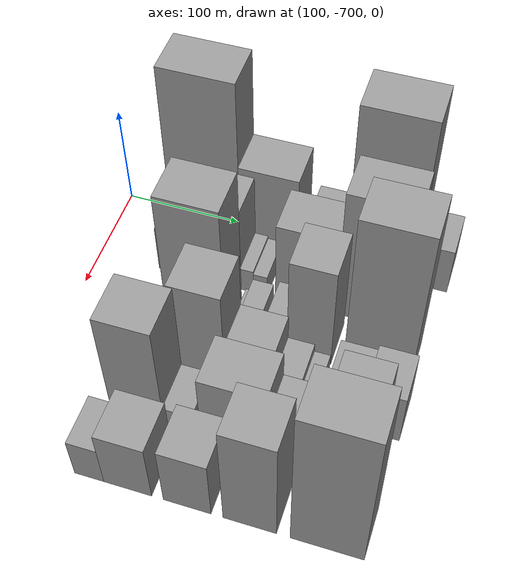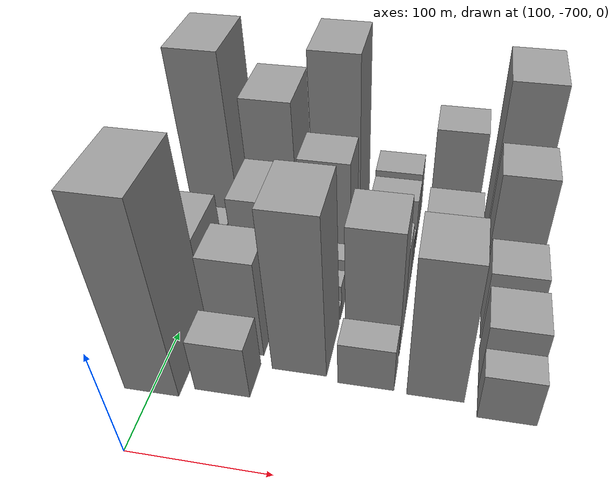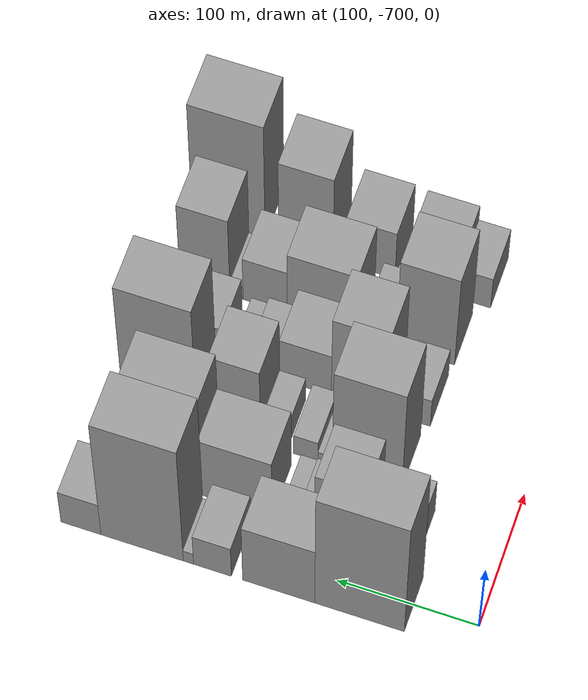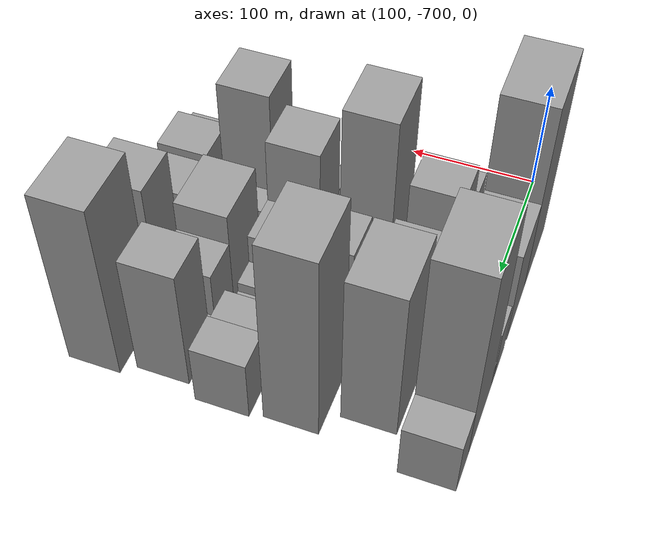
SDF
<sdf version="1.6">
 <world name="default">
  <model name="building_7">
   <static>1</static>
   <pose>100.0000 -622.5215 0 0.000000 0.000000 0.000000</pose>
   <link name="link">
    <pose>0 0 88.50 0 0 0</pose>
    <collision name="collision"><geometry><box><size>40.0000 62.9537 177.0000</size></box></geometry></collision>
    <visual name="visual">
     <cast_shadows>0</cast_shadows>
     <geometry><box><size>40.0000 62.9537 177.0000</size></box></geometry>
     <material>
      <script>
       <uri>model://grey_wall/materials/scripts</uri>
       <uri>model://grey_wall/materials/textures</uri>
       <name>vrc/grey_wall</name>
      </script>
     </material>
    </visual>
   </link>
  </model>
  <model name="building_8">
   <static>1</static>
   <pose>100.0000 -565.6612 0 0.000000 0.000000 0.000000</pose>
   <link name="link">
    <pose>0 0 45.00 0 0 0</pose>
    <collision name="collision"><geometry><box><size>40.0000 50.7670 90.0000</size></box></geometry></collision>
    <visual name="visual">
     <cast_shadows>0</cast_shadows>
     <geometry><box><size>40.0000 50.7670 90.0000</size></box></geometry>
     <material>
      <script>
       <uri>model://grey_wall/materials/scripts</uri>
       <uri>model://grey_wall/materials/textures</uri>
       <name>vrc/grey_wall</name>
      </script>
     </material>
    </visual>
   </link>
  </model>
  <model name="building_9">
   <static>1</static>
   <pose>100.0000 -518.8695 0 0.000000 0.000000 0.000000</pose>
   <link name="link">
    <pose>0 0 24.00 0 0 0</pose>
    <collision name="collision"><geometry><box><size>40.0000 26.8164 48.0000</size></box></geometry></collision>
    <visual name="visual">
     <cast_shadows>0</cast_shadows>
     <geometry><box><size>40.0000 26.8164 48.0000</size></box></geometry>
     <material>
      <script>
       <uri>model://grey_wall/materials/scripts</uri>
       <uri>model://grey_wall/materials/textures</uri>
       <name>vrc/grey_wall</name>
      </script>
     </material>
    </visual>
   </link>
  </model>
  <model name="building_10">
   <static>1</static>
   <pose>100.0000 -501.8255 0 0.000000 0.000000 0.000000</pose>
   <link name="link">
    <pose>0 0 9.00 0 0 0</pose>
    <collision name="collision"><geometry><box><size>40.0000 7.2716 18.0000</size></box></geometry></collision>
    <visual name="visual">
     <cast_shadows>0</cast_shadows>
     <geometry><box><size>40.0000 7.2716 18.0000</size></box></geometry>
     <material>
      <script>
       <uri>model://grey_wall/materials/scripts</uri>
       <uri>model://grey_wall/materials/textures</uri>
       <name>vrc/grey_wall</name>
      </script>
     </material>
    </visual>
   </link>
  </model>
  <model name="building_11">
   <static>1</static>
   <pose>100.0000 -468.8463 0 0.000000 0.000000 0.000000</pose>
   <link name="link">
    <pose>0 0 91.50 0 0 0</pose>
    <collision name="collision"><geometry><box><size>40.0000 58.6867 183.0000</size></box></geometry></collision>
    <visual name="visual">
     <cast_shadows>0</cast_shadows>
     <geometry><box><size>40.0000 58.6867 183.0000</size></box></geometry>
     <material>
      <script>
       <uri>model://grey_wall/materials/scripts</uri>
       <uri>model://grey_wall/materials/textures</uri>
       <name>vrc/grey_wall</name>
      </script>
     </material>
    </visual>
   </link>
  </model>
  <model name="building_12">
   <static>1</static>
   <pose>100.0000 -425.2195 0 0.000000 0.000000 0.000000</pose>
   <link name="link">
    <pose>0 0 25.50 0 0 0</pose>
    <collision name="collision"><geometry><box><size>40.0000 28.5671 51.0000</size></box></geometry></collision>
    <visual name="visual">
     <cast_shadows>0</cast_shadows>
     <geometry><box><size>40.0000 28.5671 51.0000</size></box></geometry>
     <material>
      <script>
       <uri>model://grey_wall/materials/scripts</uri>
       <uri>model://grey_wall/materials/textures</uri>
       <name>vrc/grey_wall</name>
      </script>
     </material>
    </visual>
   </link>
  </model>
  <model name="building_57">
   <static>1</static>
   <pose>149.0000 -632.0075 0 0.000000 0.000000 0.000000</pose>
   <link name="link">
    <pose>0 0 25.50 0 0 0</pose>
    <collision name="collision"><geometry><box><size>40.0000 28.6784 51.0000</size></box></geometry></collision>
    <visual name="visual">
     <cast_shadows>0</cast_shadows>
     <geometry><box><size>40.0000 28.6784 51.0000</size></box></geometry>
     <material>
      <script>
       <uri>model://grey_wall/materials/scripts</uri>
       <uri>model://grey_wall/materials/textures</uri>
       <name>vrc/grey_wall</name>
      </script>
     </material>
    </visual>
   </link>
  </model>
  <model name="building_58">
   <static>1</static>
   <pose>149.0000 -591.9641 0 0.000000 0.000000 0.000000</pose>
   <link name="link">
    <pose>0 0 46.50 0 0 0</pose>
    <collision name="collision"><geometry><box><size>40.0000 35.4084 93.0000</size></box></geometry></collision>
    <visual name="visual">
     <cast_shadows>0</cast_shadows>
     <geometry><box><size>40.0000 35.4084 93.0000</size></box></geometry>
     <material>
      <script>
       <uri>model://grey_wall/materials/scripts</uri>
       <uri>model://grey_wall/materials/textures</uri>
       <name>vrc/grey_wall</name>
      </script>
     </material>
    </visual>
   </link>
  </model>
  <model name="building_59">
   <static>1</static>
   <pose>149.0000 -568.5882 0 0.000000 0.000000 0.000000</pose>
   <link name="link">
    <pose>0 0 13.50 0 0 0</pose>
    <collision name="collision"><geometry><box><size>40.0000 11.3434 27.0000</size></box></geometry></collision>
    <visual name="visual">
     <cast_shadows>0</cast_shadows>
     <geometry><box><size>40.0000 11.3434 27.0000</size></box></geometry>
     <material>
      <script>
       <uri>model://grey_wall/materials/scripts</uri>
       <uri>model://grey_wall/materials/textures</uri>
       <name>vrc/grey_wall</name>
      </script>
     </material>
    </visual>
   </link>
  </model>
  <model name="building_60">
   <static>1</static>
   <pose>149.0000 -556.9815 0 0.000000 0.000000 0.000000</pose>
   <link name="link">
    <pose>0 0 12.00 0 0 0</pose>
    <collision name="collision"><geometry><box><size>40.0000 11.8700 24.0000</size></box></geometry></collision>
    <visual name="visual">
     <cast_shadows>0</cast_shadows>
     <geometry><box><size>40.0000 11.8700 24.0000</size></box></geometry>
     <material>
      <script>
       <uri>model://grey_wall/materials/scripts</uri>
       <uri>model://grey_wall/materials/textures</uri>
       <name>vrc/grey_wall</name>
      </script>
     </material>
    </visual>
   </link>
  </model>
  <model name="building_61">
   <static>1</static>
   <pose>149.0000 -518.2581 0 0.000000 0.000000 0.000000</pose>
   <link name="link">
    <pose>0 0 45.00 0 0 0</pose>
    <collision name="collision"><geometry><box><size>40.0000 51.5768 90.0000</size></box></geometry></collision>
    <visual name="visual">
     <cast_shadows>0</cast_shadows>
     <geometry><box><size>40.0000 51.5768 90.0000</size></box></geometry>
     <material>
      <script>
       <uri>model://grey_wall/materials/scripts</uri>
       <uri>model://grey_wall/materials/textures</uri>
       <name>vrc/grey_wall</name>
      </script>
     </material>
    </visual>
   </link>
  </model>
  <model name="building_62">
   <static>1</static>
   <pose>149.0000 -465.1598 0 0.000000 0.000000 0.000000</pose>
   <link name="link">
    <pose>0 0 72.00 0 0 0</pose>
    <collision name="collision"><geometry><box><size>40.0000 54.6198 144.0000</size></box></geometry></collision>
    <visual name="visual">
     <cast_shadows>0</cast_shadows>
     <geometry><box><size>40.0000 54.6198 144.0000</size></box></geometry>
     <material>
      <script>
       <uri>model://grey_wall/materials/scripts</uri>
       <uri>model://grey_wall/materials/textures</uri>
       <name>vrc/grey_wall</name>
      </script>
     </material>
    </visual>
   </link>
  </model>
  <model name="building_103">
   <static>1</static>
   <pose>198.0000 -595.1270 0 0.000000 0.000000 0.000000</pose>
   <link name="link">
    <pose>0 0 75.00 0 0 0</pose>
    <collision name="collision"><geometry><box><size>40.0000 49.7602 150.0000</size></box></geometry></collision>
    <visual name="visual">
     <cast_shadows>0</cast_shadows>
     <geometry><box><size>40.0000 49.7602 150.0000</size></box></geometry>
     <material>
      <script>
       <uri>model://grey_wall/materials/scripts</uri>
       <uri>model://grey_wall/materials/textures</uri>
       <name>vrc/grey_wall</name>
      </script>
     </material>
    </visual>
   </link>
  </model>
  <model name="building_104">
   <static>1</static>
   <pose>198.0000 -563.1306 0 0.000000 0.000000 0.000000</pose>
   <link name="link">
    <pose>0 0 7.50 0 0 0</pose>
    <collision name="collision"><geometry><box><size>40.0000 6.2326 15.0000</size></box></geometry></collision>
    <visual name="visual">
     <cast_shadows>0</cast_shadows>
     <geometry><box><size>40.0000 6.2326 15.0000</size></box></geometry>
     <material>
      <script>
       <uri>model://grey_wall/materials/scripts</uri>
       <uri>model://grey_wall/materials/textures</uri>
       <name>vrc/grey_wall</name>
      </script>
     </material>
    </visual>
   </link>
  </model>
  <model name="building_105">
   <static>1</static>
   <pose>198.0000 -551.3406 0 0.000000 0.000000 0.000000</pose>
   <link name="link">
    <pose>0 0 15.00 0 0 0</pose>
    <collision name="collision"><geometry><box><size>40.0000 17.3473 30.0000</size></box></geometry></collision>
    <visual name="visual">
     <cast_shadows>0</cast_shadows>
     <geometry><box><size>40.0000 17.3473 30.0000</size></box></geometry>
     <material>
      <script>
       <uri>model://grey_wall/materials/scripts</uri>
       <uri>model://grey_wall/materials/textures</uri>
       <name>vrc/grey_wall</name>
      </script>
     </material>
    </visual>
   </link>
  </model>
  <model name="building_106">
   <static>1</static>
   <pose>198.0000 -528.3417 0 0.000000 0.000000 0.000000</pose>
   <link name="link">
    <pose>0 0 18.00 0 0 0</pose>
    <collision name="collision"><geometry><box><size>40.0000 18.6507 36.0000</size></box></geometry></collision>
    <visual name="visual">
     <cast_shadows>0</cast_shadows>
     <geometry><box><size>40.0000 18.6507 36.0000</size></box></geometry>
     <material>
      <script>
       <uri>model://grey_wall/materials/scripts</uri>
       <uri>model://grey_wall/materials/textures</uri>
       <name>vrc/grey_wall</name>
      </script>
     </material>
    </visual>
   </link>
  </model>
  <model name="building_107">
   <static>1</static>
   <pose>198.0000 -501.0726 0 0.000000 0.000000 0.000000</pose>
   <link name="link">
    <pose>0 0 57.00 0 0 0</pose>
    <collision name="collision"><geometry><box><size>40.0000 35.8875 114.0000</size></box></geometry></collision>
    <visual name="visual">
     <cast_shadows>0</cast_shadows>
     <geometry><box><size>40.0000 35.8875 114.0000</size></box></geometry>
     <material>
      <script>
       <uri>model://grey_wall/materials/scripts</uri>
       <uri>model://grey_wall/materials/textures</uri>
       <name>vrc/grey_wall</name>
      </script>
     </material>
    </visual>
   </link>
  </model>
  <model name="building_108">
   <static>1</static>
   <pose>198.0000 -446.3652 0 0.000000 0.000000 0.000000</pose>
   <link name="link">
    <pose>0 0 88.50 0 0 0</pose>
    <collision name="collision"><geometry><box><size>40.0000 53.5273 177.0000</size></box></geometry></collision>
    <visual name="visual">
     <cast_shadows>0</cast_shadows>
     <geometry><box><size>40.0000 53.5273 177.0000</size></box></geometry>
     <material>
      <script>
       <uri>model://grey_wall/materials/scripts</uri>
       <uri>model://grey_wall/materials/textures</uri>
       <name>vrc/grey_wall</name>
      </script>
     </material>
    </visual>
   </link>
  </model>
  <model name="building_150">
   <static>1</static>
   <pose>247.0000 -612.0534 0 0.000000 0.000000 0.000000</pose>
   <link name="link">
    <pose>0 0 21.00 0 0 0</pose>
    <collision name="collision"><geometry><box><size>40.0000 23.8405 42.0000</size></box></geometry></collision>
    <visual name="visual">
     <cast_shadows>0</cast_shadows>
     <geometry><box><size>40.0000 23.8405 42.0000</size></box></geometry>
     <material>
      <script>
       <uri>model://grey_wall/materials/scripts</uri>
       <uri>model://grey_wall/materials/textures</uri>
       <name>vrc/grey_wall</name>
      </script>
     </material>
    </visual>
   </link>
  </model>
  <model name="building_151">
   <static>1</static>
   <pose>247.0000 -573.0589 0 0.000000 0.000000 0.000000</pose>
   <link name="link">
    <pose>0 0 60.00 0 0 0</pose>
    <collision name="collision"><geometry><box><size>40.0000 40.1486 120.0000</size></box></geometry></collision>
    <visual name="visual">
     <cast_shadows>0</cast_shadows>
     <geometry><box><size>40.0000 40.1486 120.0000</size></box></geometry>
     <material>
      <script>
       <uri>model://grey_wall/materials/scripts</uri>
       <uri>model://grey_wall/materials/textures</uri>
       <name>vrc/grey_wall</name>
      </script>
     </material>
    </visual>
   </link>
  </model>
  <model name="building_152">
   <static>1</static>
   <pose>247.0000 -534.2959 0 0.000000 0.000000 0.000000</pose>
   <link name="link">
    <pose>0 0 31.50 0 0 0</pose>
    <collision name="collision"><geometry><box><size>40.0000 37.3773 63.0000</size></box></geometry></collision>
    <visual name="visual">
     <cast_shadows>0</cast_shadows>
     <geometry><box><size>40.0000 37.3773 63.0000</size></box></geometry>
     <material>
      <script>
       <uri>model://grey_wall/materials/scripts</uri>
       <uri>model://grey_wall/materials/textures</uri>
       <name>vrc/grey_wall</name>
      </script>
     </material>
    </visual>
   </link>
  </model>
  <model name="building_153">
   <static>1</static>
   <pose>247.0000 -505.0467 0 0.000000 0.000000 0.000000</pose>
   <link name="link">
    <pose>0 0 18.00 0 0 0</pose>
    <collision name="collision"><geometry><box><size>40.0000 21.1213 36.0000</size></box></geometry></collision>
    <visual name="visual">
     <cast_shadows>0</cast_shadows>
     <geometry><box><size>40.0000 21.1213 36.0000</size></box></geometry>
     <material>
      <script>
       <uri>model://grey_wall/materials/scripts</uri>
       <uri>model://grey_wall/materials/textures</uri>
       <name>vrc/grey_wall</name>
      </script>
     </material>
    </visual>
   </link>
  </model>
  <model name="building_154">
   <static>1</static>
   <pose>247.0000 -488.1256 0 0.000000 0.000000 0.000000</pose>
   <link name="link">
    <pose>0 0 13.50 0 0 0</pose>
    <collision name="collision"><geometry><box><size>40.0000 12.7208 27.0000</size></box></geometry></collision>
    <visual name="visual">
     <cast_shadows>0</cast_shadows>
     <geometry><box><size>40.0000 12.7208 27.0000</size></box></geometry>
     <material>
      <script>
       <uri>model://grey_wall/materials/scripts</uri>
       <uri>model://grey_wall/materials/textures</uri>
       <name>vrc/grey_wall</name>
      </script>
     </material>
    </visual>
   </link>
  </model>
  <model name="building_155">
   <static>1</static>
   <pose>247.0000 -460.4381 0 0.000000 0.000000 0.000000</pose>
   <link name="link">
    <pose>0 0 25.50 0 0 0</pose>
    <collision name="collision"><geometry><box><size>40.0000 28.6541 51.0000</size></box></geometry></collision>
    <visual name="visual">
     <cast_shadows>0</cast_shadows>
     <geometry><box><size>40.0000 28.6541 51.0000</size></box></geometry>
     <material>
      <script>
       <uri>model://grey_wall/materials/scripts</uri>
       <uri>model://grey_wall/materials/textures</uri>
       <name>vrc/grey_wall</name>
      </script>
     </material>
    </visual>
   </link>
  </model>
  <model name="building_156">
   <static>1</static>
   <pose>247.0000 -431.1607 0 0.000000 0.000000 0.000000</pose>
   <link name="link">
    <pose>0 0 28.50 0 0 0</pose>
    <collision name="collision"><geometry><box><size>40.0000 29.9008 57.0000</size></box></geometry></collision>
    <visual name="visual">
     <cast_shadows>0</cast_shadows>
     <geometry><box><size>40.0000 29.9008 57.0000</size></box></geometry>
     <material>
      <script>
       <uri>model://grey_wall/materials/scripts</uri>
       <uri>model://grey_wall/materials/textures</uri>
       <name>vrc/grey_wall</name>
      </script>
     </material>
    </visual>
   </link>
  </model>
  <model name="building_200">
   <static>1</static>
   <pose>296.0000 -604.3608 0 0.000000 0.000000 0.000000</pose>
   <link name="link">
    <pose>0 0 66.00 0 0 0</pose>
    <collision name="collision"><geometry><box><size>40.0000 41.9792 132.0000</size></box></geometry></collision>
    <visual name="visual">
     <cast_shadows>0</cast_shadows>
     <geometry><box><size>40.0000 41.9792 132.0000</size></box></geometry>
     <material>
      <script>
       <uri>model://grey_wall/materials/scripts</uri>
       <uri>model://grey_wall/materials/textures</uri>
       <name>vrc/grey_wall</name>
      </script>
     </material>
    </visual>
   </link>
  </model>
  <model name="building_201">
   <static>1</static>
   <pose>296.0000 -572.0030 0 0.000000 0.000000 0.000000</pose>
   <link name="link">
    <pose>0 0 19.50 0 0 0</pose>
    <collision name="collision"><geometry><box><size>40.0000 22.7363 39.0000</size></box></geometry></collision>
    <visual name="visual">
     <cast_shadows>0</cast_shadows>
     <geometry><box><size>40.0000 22.7363 39.0000</size></box></geometry>
     <material>
      <script>
       <uri>model://grey_wall/materials/scripts</uri>
       <uri>model://grey_wall/materials/textures</uri>
       <name>vrc/grey_wall</name>
      </script>
     </material>
    </visual>
   </link>
  </model>
  <model name="building_202">
   <static>1</static>
   <pose>296.0000 -529.4546 0 0.000000 0.000000 0.000000</pose>
   <link name="link">
    <pose>0 0 45.00 0 0 0</pose>
    <collision name="collision"><geometry><box><size>40.0000 50.3605 90.0000</size></box></geometry></collision>
    <visual name="visual">
     <cast_shadows>0</cast_shadows>
     <geometry><box><size>40.0000 50.3605 90.0000</size></box></geometry>
     <material>
      <script>
       <uri>model://grey_wall/materials/scripts</uri>
       <uri>model://grey_wall/materials/textures</uri>
       <name>vrc/grey_wall</name>
      </script>
     </material>
    </visual>
   </link>
  </model>
  <model name="building_203">
   <static>1</static>
   <pose>296.0000 -488.2590 0 0.000000 0.000000 0.000000</pose>
   <link name="link">
    <pose>0 0 31.50 0 0 0</pose>
    <collision name="collision"><geometry><box><size>40.0000 32.0307 63.0000</size></box></geometry></collision>
    <visual name="visual">
     <cast_shadows>0</cast_shadows>
     <geometry><box><size>40.0000 32.0307 63.0000</size></box></geometry>
     <material>
      <script>
       <uri>model://grey_wall/materials/scripts</uri>
       <uri>model://grey_wall/materials/textures</uri>
       <name>vrc/grey_wall</name>
      </script>
     </material>
    </visual>
   </link>
  </model>
  <model name="building_204">
   <static>1</static>
   <pose>296.0000 -467.4617 0 0.000000 0.000000 0.000000</pose>
   <link name="link">
    <pose>0 0 10.50 0 0 0</pose>
    <collision name="collision"><geometry><box><size>40.0000 9.5639 21.0000</size></box></geometry></collision>
    <visual name="visual">
     <cast_shadows>0</cast_shadows>
     <geometry><box><size>40.0000 9.5639 21.0000</size></box></geometry>
     <material>
      <script>
       <uri>model://grey_wall/materials/scripts</uri>
       <uri>model://grey_wall/materials/textures</uri>
       <name>vrc/grey_wall</name>
      </script>
     </material>
    </visual>
   </link>
  </model>
  <model name="building_205">
   <static>1</static>
   <pose>296.0000 -444.4138 0 0.000000 0.000000 0.000000</pose>
   <link name="link">
    <pose>0 0 57.00 0 0 0</pose>
    <collision name="collision"><geometry><box><size>40.0000 36.5318 114.0000</size></box></geometry></collision>
    <visual name="visual">
     <cast_shadows>0</cast_shadows>
     <geometry><box><size>40.0000 36.5318 114.0000</size></box></geometry>
     <material>
      <script>
       <uri>model://grey_wall/materials/scripts</uri>
       <uri>model://grey_wall/materials/textures</uri>
       <name>vrc/grey_wall</name>
      </script>
     </material>
    </visual>
   </link>
  </model>
  <model name="building_248">
   <static>1</static>
   <pose>345.0000 -624.0183 0 0.000000 0.000000 0.000000</pose>
   <link name="link">
    <pose>0 0 22.50 0 0 0</pose>
    <collision name="collision"><geometry><box><size>40.0000 23.1026 45.0000</size></box></geometry></collision>
    <visual name="visual">
     <cast_shadows>0</cast_shadows>
     <geometry><box><size>40.0000 23.1026 45.0000</size></box></geometry>
     <material>
      <script>
       <uri>model://grey_wall/materials/scripts</uri>
       <uri>model://grey_wall/materials/textures</uri>
       <name>vrc/grey_wall</name>
      </script>
     </material>
    </visual>
   </link>
  </model>
  <model name="building_249">
   <static>1</static>
   <pose>345.0000 -593.8742 0 0.000000 0.000000 0.000000</pose>
   <link name="link">
    <pose>0 0 33.00 0 0 0</pose>
    <collision name="collision"><geometry><box><size>40.0000 37.1856 66.0000</size></box></geometry></collision>
    <visual name="visual">
     <cast_shadows>0</cast_shadows>
     <geometry><box><size>40.0000 37.1856 66.0000</size></box></geometry>
     <material>
      <script>
       <uri>model://grey_wall/materials/scripts</uri>
       <uri>model://grey_wall/materials/textures</uri>
       <name>vrc/grey_wall</name>
      </script>
     </material>
    </visual>
   </link>
  </model>
  <model name="building_250">
   <static>1</static>
   <pose>345.0000 -548.1502 0 0.000000 0.000000 0.000000</pose>
   <link name="link">
    <pose>0 0 34.50 0 0 0</pose>
    <collision name="collision"><geometry><box><size>40.0000 36.2623 69.0000</size></box></geometry></collision>
    <visual name="visual">
     <cast_shadows>0</cast_shadows>
     <geometry><box><size>40.0000 36.2623 69.0000</size></box></geometry>
     <material>
      <script>
       <uri>model://grey_wall/materials/scripts</uri>
       <uri>model://grey_wall/materials/textures</uri>
       <name>vrc/grey_wall</name>
      </script>
     </material>
    </visual>
   </link>
  </model>
  <model name="building_251">
   <static>1</static>
   <pose>345.0000 -501.1577 0 0.000000 0.000000 0.000000</pose>
   <link name="link">
    <pose>0 0 60.00 0 0 0</pose>
    <collision name="collision"><geometry><box><size>40.0000 39.7228 120.0000</size></box></geometry></collision>
    <visual name="visual">
     <cast_shadows>0</cast_shadows>
     <geometry><box><size>40.0000 39.7228 120.0000</size></box></geometry>
     <material>
      <script>
       <uri>model://grey_wall/materials/scripts</uri>
       <uri>model://grey_wall/materials/textures</uri>
       <name>vrc/grey_wall</name>
      </script>
     </material>
    </visual>
   </link>
  </model>
  <model name="building_252">
   <static>1</static>
   <pose>345.0000 -444.4823 0 0.000000 0.000000 0.000000</pose>
   <link name="link">
    <pose>0 0 82.50 0 0 0</pose>
    <collision name="collision"><geometry><box><size>40.0000 53.6280 165.0000</size></box></geometry></collision>
    <visual name="visual">
     <cast_shadows>0</cast_shadows>
     <geometry><box><size>40.0000 53.6280 165.0000</size></box></geometry>
     <material>
      <script>
       <uri>model://grey_wall/materials/scripts</uri>
       <uri>model://grey_wall/materials/textures</uri>
       <name>vrc/grey_wall</name>
      </script>
     </material>
    </visual>
   </link>
  </model>
 </world>
</sdf>
